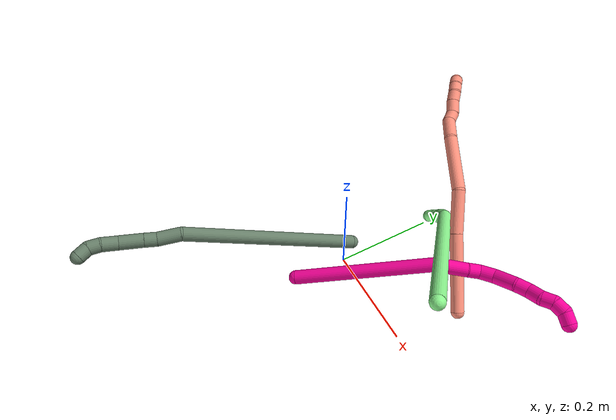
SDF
<sdf version="1.7">
 <world name="default">
  <model name="13">
   <static>0</static>
   <link name="13">
    <collision name="collision-cylinder-e_1_1_4">
     <pose>0.006125 0.071233 -0.178175 -2.76126 0.031911 -0.165414</pose>
     <geometry><cylinder><radius>0.0125</radius><length>0.383968</length></cylinder></geometry>
     <surface>
      <friction><ode><mu>1.16</mu><mu2>1.16</mu2><slip1>0</slip1><slip2>0</slip2></ode></friction>
      <contact><ode><kp>1e+06</kp><kd>1</kd><max_vel>0</max_vel><min_depth>0.001</min_depth></ode></contact>
     </surface>
    </collision>
    <visual name="visual-cylinder-e_1_1_4">
     <pose>0.006125 0.071233 -0.178175 -2.76126 0.031911 -0.165414</pose>
     <geometry><cylinder><radius>0.0125</radius><length>0.383968</length></cylinder></geometry>
     <material><ambient>0.564706 0.984314 0.572549 1</ambient></material>
    </visual>
    <collision name="collision-cylinder-e_2_4_5">
     <pose>0.011922 0.142947 -0.367988 -3.10032 -0.028196 1.1985</pose>
     <geometry><cylinder><radius>0.0125</radius><length>0.023306</length></cylinder></geometry>
     <surface>
      <friction><ode><mu>1.16</mu><mu2>1.16</mu2><slip1>0</slip1><slip2>0</slip2></ode></friction>
      <contact><ode><kp>1e+06</kp><kd>1</kd><max_vel>0</max_vel><min_depth>0.001</min_depth></ode></contact>
     </surface>
    </collision>
    <visual name="visual-cylinder-e_2_4_5">
     <pose>0.011922 0.142947 -0.367988 -3.10032 -0.028196 1.1985</pose>
     <geometry><cylinder><radius>0.0125</radius><length>0.023306</length></cylinder></geometry>
     <material><ambient>0.564706 0.984314 0.572549 1</ambient></material>
    </visual>
    <collision name="collision-cylinder-e_3_5_6">
     <pose>0.013087 0.143549 -0.393059 -3.13252 0.110751 -2.9783</pose>
     <geometry><cylinder><radius>0.0125</radius><length>0.027032</length></cylinder></geometry>
     <surface>
      <friction><ode><mu>1.16</mu><mu2>1.16</mu2><slip1>0</slip1><slip2>0</slip2></ode></friction>
      <contact><ode><kp>1e+06</kp><kd>1</kd><max_vel>0</max_vel><min_depth>0.001</min_depth></ode></contact>
     </surface>
    </collision>
    <visual name="visual-cylinder-e_3_5_6">
     <pose>0.013087 0.143549 -0.393059 -3.13252 0.110751 -2.9783</pose>
     <geometry><cylinder><radius>0.0125</radius><length>0.027032</length></cylinder></geometry>
     <material><ambient>0.564706 0.984314 0.572549 1</ambient></material>
    </visual>
    <collision name="collision-cylinder-e_4_6_7">
     <pose>0.017201 0.14315 -0.418764 3.09917 0.21013 2.74457</pose>
     <geometry><cylinder><radius>0.0125</radius><length>0.02512</length></cylinder></geometry>
     <surface>
      <friction><ode><mu>1.16</mu><mu2>1.16</mu2><slip1>0</slip1><slip2>0</slip2></ode></friction>
      <contact><ode><kp>1e+06</kp><kd>1</kd><max_vel>0</max_vel><min_depth>0.001</min_depth></ode></contact>
     </surface>
    </collision>
    <visual name="visual-cylinder-e_4_6_7">
     <pose>0.017201 0.14315 -0.418764 3.09917 0.21013 2.74457</pose>
     <geometry><cylinder><radius>0.0125</radius><length>0.02512</length></cylinder></geometry>
     <material><ambient>0.564706 0.984314 0.572549 1</ambient></material>
    </visual>
    <collision name="collision-cylinder-e_5_7_8">
     <pose>0.018922 0.142635 -0.441009 -3.14106 -0.089875 3.12979</pose>
     <geometry><cylinder><radius>0.0125</radius><length>0.020026</length></cylinder></geometry>
     <surface>
      <friction><ode><mu>1.16</mu><mu2>1.16</mu2><slip1>0</slip1><slip2>0</slip2></ode></friction>
      <contact><ode><kp>1e+06</kp><kd>1</kd><max_vel>0</max_vel><min_depth>0.001</min_depth></ode></contact>
     </surface>
    </collision>
    <visual name="visual-cylinder-e_5_7_8">
     <pose>0.018922 0.142635 -0.441009 -3.14106 -0.089875 3.12979</pose>
     <geometry><cylinder><radius>0.0125</radius><length>0.020026</length></cylinder></geometry>
     <material><ambient>0.564706 0.984314 0.572549 1</ambient></material>
    </visual>
    <collision name="collision-cylinder-e_6_8_2">
     <pose>0.015182 0.13915 -0.460218 2.78028 -0.280201 -1.31502</pose>
     <geometry><cylinder><radius>0.0125</radius><length>0.020548</length></cylinder></geometry>
     <surface>
      <friction><ode><mu>1.16</mu><mu2>1.16</mu2><slip1>0</slip1><slip2>0</slip2></ode></friction>
      <contact><ode><kp>1e+06</kp><kd>1</kd><max_vel>0</max_vel><min_depth>0.001</min_depth></ode></contact>
     </surface>
    </collision>
    <visual name="visual-cylinder-e_6_8_2">
     <pose>0.015182 0.13915 -0.460218 2.78028 -0.280201 -1.31502</pose>
     <geometry><cylinder><radius>0.0125</radius><length>0.020548</length></cylinder></geometry>
     <material><ambient>0.564706 0.984314 0.572549 1</ambient></material>
    </visual>
    <collision name="collision-sphere-2">
     <pose>0.012341 0.135659 -0.469454 0 -0 0</pose>
     <geometry><sphere><radius>0.0125</radius></sphere></geometry>
     <surface>
      <friction><ode><mu>1.16</mu><mu2>1.16</mu2><slip1>0</slip1><slip2>0</slip2></ode></friction>
      <contact><ode><kp>1e+06</kp><kd>1</kd><max_vel>0</max_vel><min_depth>0.001</min_depth></ode></contact>
     </surface>
    </collision>
    <visual name="visual-sphere-2">
     <pose>0.012341 0.135659 -0.469454 0 -0 0</pose>
     <geometry><sphere><radius>0.0125</radius></sphere></geometry>
     <material><ambient>0.564706 0.984314 0.572549 1</ambient></material>
    </visual>
    <collision name="collision-sphere-4">
     <pose>0.012251 0.142466 -0.356349 0 -0 0</pose>
     <geometry><sphere><radius>0.0125</radius></sphere></geometry>
     <surface>
      <friction><ode><mu>1.16</mu><mu2>1.16</mu2><slip1>0</slip1><slip2>0</slip2></ode></friction>
      <contact><ode><kp>1e+06</kp><kd>1</kd><max_vel>0</max_vel><min_depth>0.001</min_depth></ode></contact>
     </surface>
    </collision>
    <visual name="visual-sphere-4">
     <pose>0.012251 0.142466 -0.356349 0 -0 0</pose>
     <geometry><sphere><radius>0.0125</radius></sphere></geometry>
     <material><ambient>0.564706 0.984314 0.572549 1</ambient></material>
    </visual>
    <collision name="collision-sphere-1">
     <geometry><sphere><radius>0.0125</radius></sphere></geometry>
     <surface>
      <friction><ode><mu>1.16</mu><mu2>1.16</mu2><slip1>0</slip1><slip2>0</slip2></ode></friction>
      <contact><ode><kp>1e+06</kp><kd>1</kd><max_vel>0</max_vel><min_depth>0.001</min_depth></ode></contact>
     </surface>
    </collision>
    <visual name="visual-sphere-1">
     <geometry><sphere><radius>0.0125</radius></sphere></geometry>
     <material><ambient>0.564706 0.984314 0.572549 1</ambient></material>
    </visual>
    <collision name="collision-sphere-8">
     <pose>0.018023 0.14264 -0.450982 0 -0 0</pose>
     <geometry><sphere><radius>0.0125</radius></sphere></geometry>
     <surface>
      <friction><ode><mu>1.16</mu><mu2>1.16</mu2><slip1>0</slip1><slip2>0</slip2></ode></friction>
      <contact><ode><kp>1e+06</kp><kd>1</kd><max_vel>0</max_vel><min_depth>0.001</min_depth></ode></contact>
     </surface>
    </collision>
    <visual name="visual-sphere-8">
     <pose>0.018023 0.14264 -0.450982 0 -0 0</pose>
     <geometry><sphere><radius>0.0125</radius></sphere></geometry>
     <material><ambient>0.564706 0.984314 0.572549 1</ambient></material>
    </visual>
    <collision name="collision-sphere-5">
     <pose>0.011594 0.143427 -0.379626 0 -0 0</pose>
     <geometry><sphere><radius>0.0125</radius></sphere></geometry>
     <surface>
      <friction><ode><mu>1.16</mu><mu2>1.16</mu2><slip1>0</slip1><slip2>0</slip2></ode></friction>
      <contact><ode><kp>1e+06</kp><kd>1</kd><max_vel>0</max_vel><min_depth>0.001</min_depth></ode></contact>
     </surface>
    </collision>
    <visual name="visual-sphere-5">
     <pose>0.011594 0.143427 -0.379626 0 -0 0</pose>
     <geometry><sphere><radius>0.0125</radius></sphere></geometry>
     <material><ambient>0.564706 0.984314 0.572549 1</ambient></material>
    </visual>
    <collision name="collision-sphere-6">
     <pose>0.014581 0.143671 -0.406492 0 -0 0</pose>
     <geometry><sphere><radius>0.0125</radius></sphere></geometry>
     <surface>
      <friction><ode><mu>1.16</mu><mu2>1.16</mu2><slip1>0</slip1><slip2>0</slip2></ode></friction>
      <contact><ode><kp>1e+06</kp><kd>1</kd><max_vel>0</max_vel><min_depth>0.001</min_depth></ode></contact>
     </surface>
    </collision>
    <visual name="visual-sphere-6">
     <pose>0.014581 0.143671 -0.406492 0 -0 0</pose>
     <geometry><sphere><radius>0.0125</radius></sphere></geometry>
     <material><ambient>0.564706 0.984314 0.572549 1</ambient></material>
    </visual>
    <collision name="collision-sphere-7">
     <pose>0.019821 0.142629 -0.431037 0 -0 0</pose>
     <geometry><sphere><radius>0.0125</radius></sphere></geometry>
     <surface>
      <friction><ode><mu>1.16</mu><mu2>1.16</mu2><slip1>0</slip1><slip2>0</slip2></ode></friction>
      <contact><ode><kp>1e+06</kp><kd>1</kd><max_vel>0</max_vel><min_depth>0.001</min_depth></ode></contact>
     </surface>
    </collision>
    <visual name="visual-sphere-7">
     <pose>0.019821 0.142629 -0.431037 0 -0 0</pose>
     <geometry><sphere><radius>0.0125</radius></sphere></geometry>
     <material><ambient>0.564706 0.984314 0.572549 1</ambient></material>
    </visual>
    <inertial>
     <pose>0.008213 0.087749 -0.232845 0 -0 0</pose>
     <mass>0.5</mass>
     <inertia>
      <ixx>0.003883</ixx>
      <ixy>0</ixy>
      <ixz>0</ixz>
      <iyy>-0.005087</iyy>
      <iyz>0</iyz>
      <izz>-0.001943</izz>
     </inertia>
    </inertial>
   </link>
   <pose>0.301243 -0.033363 0.303134 0.568648 0.487925 0.52333</pose>
  </model>
  <model name="16">
   <static>0</static>
   <link name="16">
    <collision name="collision-cylinder-e_1_1_4">
     <pose>0.004253 0.005961 0.072459 -0.082085 0.058429 -0.0024</pose>
     <geometry><cylinder><radius>0.0125</radius><length>0.145657</length></cylinder></geometry>
     <surface>
      <friction><ode><mu>1.16</mu><mu2>1.16</mu2><slip1>0</slip1><slip2>0</slip2></ode></friction>
      <contact><ode><kp>1e+06</kp><kd>1</kd><max_vel>0</max_vel><min_depth>0.001</min_depth></ode></contact>
     </surface>
    </collision>
    <visual name="visual-cylinder-e_1_1_4">
     <pose>0.004253 0.005961 0.072459 -0.082085 0.058429 -0.0024</pose>
     <geometry><cylinder><radius>0.0125</radius><length>0.145657</length></cylinder></geometry>
     <material><ambient>1 0.576471 0.494118 1</ambient></material>
    </visual>
    <collision name="collision-cylinder-e_2_4_5">
     <pose>0.009353 0.017816 0.18552 -0.14414 0.020644 -0.00149</pose>
     <geometry><cylinder><radius>0.0125</radius><length>0.082071</length></cylinder></geometry>
     <surface>
      <friction><ode><mu>1.16</mu><mu2>1.16</mu2><slip1>0</slip1><slip2>0</slip2></ode></friction>
      <contact><ode><kp>1e+06</kp><kd>1</kd><max_vel>0</max_vel><min_depth>0.001</min_depth></ode></contact>
     </surface>
    </collision>
    <visual name="visual-cylinder-e_2_4_5">
     <pose>0.009353 0.017816 0.18552 -0.14414 0.020644 -0.00149</pose>
     <geometry><cylinder><radius>0.0125</radius><length>0.082071</length></cylinder></geometry>
     <material><ambient>1 0.576471 0.494118 1</ambient></material>
    </visual>
    <collision name="collision-cylinder-e_3_5_6">
     <pose>-0.00647 0.019336 0.278954 0.08257 -0.304664 -0.012683</pose>
     <geometry><cylinder><radius>0.0125</radius><length>0.111144</length></cylinder></geometry>
     <surface>
      <friction><ode><mu>1.16</mu><mu2>1.16</mu2><slip1>0</slip1><slip2>0</slip2></ode></friction>
      <contact><ode><kp>1e+06</kp><kd>1</kd><max_vel>0</max_vel><min_depth>0.001</min_depth></ode></contact>
     </surface>
    </collision>
    <visual name="visual-cylinder-e_3_5_6">
     <pose>-0.00647 0.019336 0.278954 0.08257 -0.304664 -0.012683</pose>
     <geometry><cylinder><radius>0.0125</radius><length>0.111144</length></cylinder></geometry>
     <material><ambient>1 0.576471 0.494118 1</ambient></material>
    </visual>
    <collision name="collision-cylinder-e_4_6_7">
     <pose>-0.037954 0.013231 0.352226 0.084578 -0.62544 -0.027361</pose>
     <geometry><cylinder><radius>0.0125</radius><length>0.050605</length></cylinder></geometry>
     <surface>
      <friction><ode><mu>1.16</mu><mu2>1.16</mu2><slip1>0</slip1><slip2>0</slip2></ode></friction>
      <contact><ode><kp>1e+06</kp><kd>1</kd><max_vel>0</max_vel><min_depth>0.001</min_depth></ode></contact>
     </surface>
    </collision>
    <visual name="visual-cylinder-e_4_6_7">
     <pose>-0.037954 0.013231 0.352226 0.084578 -0.62544 -0.027361</pose>
     <geometry><cylinder><radius>0.0125</radius><length>0.050605</length></cylinder></geometry>
     <material><ambient>1 0.576471 0.494118 1</ambient></material>
    </visual>
    <collision name="collision-cylinder-e_5_7_8">
     <pose>-0.058431 0.015338 0.381248 -0.420655 -0.542103 0.118512</pose>
     <geometry><cylinder><radius>0.0125</radius><length>0.021953</length></cylinder></geometry>
     <surface>
      <friction><ode><mu>1.16</mu><mu2>1.16</mu2><slip1>0</slip1><slip2>0</slip2></ode></friction>
      <contact><ode><kp>1e+06</kp><kd>1</kd><max_vel>0</max_vel><min_depth>0.001</min_depth></ode></contact>
     </surface>
    </collision>
    <visual name="visual-cylinder-e_5_7_8">
     <pose>-0.058431 0.015338 0.381248 -0.420655 -0.542103 0.118512</pose>
     <geometry><cylinder><radius>0.0125</radius><length>0.021953</length></cylinder></geometry>
     <material><ambient>1 0.576471 0.494118 1</ambient></material>
    </visual>
    <collision name="collision-cylinder-e_6_8_9">
     <pose>-0.06766 0.020311 0.402656 -0.08813 -0.270196 0.011987</pose>
     <geometry><cylinder><radius>0.0125</radius><length>0.026718</length></cylinder></geometry>
     <surface>
      <friction><ode><mu>1.16</mu><mu2>1.16</mu2><slip1>0</slip1><slip2>0</slip2></ode></friction>
      <contact><ode><kp>1e+06</kp><kd>1</kd><max_vel>0</max_vel><min_depth>0.001</min_depth></ode></contact>
     </surface>
    </collision>
    <visual name="visual-cylinder-e_6_8_9">
     <pose>-0.06766 0.020311 0.402656 -0.08813 -0.270196 0.011987</pose>
     <geometry><cylinder><radius>0.0125</radius><length>0.026718</length></cylinder></geometry>
     <material><ambient>1 0.576471 0.494118 1</ambient></material>
    </visual>
    <collision name="collision-cylinder-e_7_9_10">
     <pose>-0.074332 0.023765 0.425536 -0.226857 -0.292441 0.03355</pose>
     <geometry><cylinder><radius>0.0125</radius><length>0.021556</length></cylinder></geometry>
     <surface>
      <friction><ode><mu>1.16</mu><mu2>1.16</mu2><slip1>0</slip1><slip2>0</slip2></ode></friction>
      <contact><ode><kp>1e+06</kp><kd>1</kd><max_vel>0</max_vel><min_depth>0.001</min_depth></ode></contact>
     </surface>
    </collision>
    <visual name="visual-cylinder-e_7_9_10">
     <pose>-0.074332 0.023765 0.425536 -0.226857 -0.292441 0.03355</pose>
     <geometry><cylinder><radius>0.0125</radius><length>0.021556</length></cylinder></geometry>
     <material><ambient>1 0.576471 0.494118 1</ambient></material>
    </visual>
    <collision name="collision-cylinder-e_8_10_11">
     <pose>-0.082596 0.027142 0.444198 -0.122032 -0.536471 0.03358</pose>
     <geometry><cylinder><radius>0.0125</radius><length>0.020176</length></cylinder></geometry>
     <surface>
      <friction><ode><mu>1.16</mu><mu2>1.16</mu2><slip1>0</slip1><slip2>0</slip2></ode></friction>
      <contact><ode><kp>1e+06</kp><kd>1</kd><max_vel>0</max_vel><min_depth>0.001</min_depth></ode></contact>
     </surface>
    </collision>
    <visual name="visual-cylinder-e_8_10_11">
     <pose>-0.082596 0.027142 0.444198 -0.122032 -0.536471 0.03358</pose>
     <geometry><cylinder><radius>0.0125</radius><length>0.020176</length></cylinder></geometry>
     <material><ambient>1 0.576471 0.494118 1</ambient></material>
    </visual>
    <collision name="collision-cylinder-e_9_11_2">
     <pose>-0.094756 0.029027 0.459978 -0.115217 -0.77009 0.046738</pose>
     <geometry><cylinder><radius>0.0125</radius><length>0.02012</length></cylinder></geometry>
     <surface>
      <friction><ode><mu>1.16</mu><mu2>1.16</mu2><slip1>0</slip1><slip2>0</slip2></ode></friction>
      <contact><ode><kp>1e+06</kp><kd>1</kd><max_vel>0</max_vel><min_depth>0.001</min_depth></ode></contact>
     </surface>
    </collision>
    <visual name="visual-cylinder-e_9_11_2">
     <pose>-0.094756 0.029027 0.459978 -0.115217 -0.77009 0.046738</pose>
     <geometry><cylinder><radius>0.0125</radius><length>0.02012</length></cylinder></geometry>
     <material><ambient>1 0.576471 0.494118 1</ambient></material>
    </visual>
    <collision name="collision-sphere-2">
     <pose>-0.101759 0.029858 0.467152 0 -0 0</pose>
     <geometry><sphere><radius>0.0125</radius></sphere></geometry>
     <surface>
      <friction><ode><mu>1.16</mu><mu2>1.16</mu2><slip1>0</slip1><slip2>0</slip2></ode></friction>
      <contact><ode><kp>1e+06</kp><kd>1</kd><max_vel>0</max_vel><min_depth>0.001</min_depth></ode></contact>
     </surface>
    </collision>
    <visual name="visual-sphere-2">
     <pose>-0.101759 0.029858 0.467152 0 -0 0</pose>
     <geometry><sphere><radius>0.0125</radius></sphere></geometry>
     <material><ambient>1 0.576471 0.494118 1</ambient></material>
    </visual>
    <collision name="collision-sphere-11">
     <pose>-0.087752 0.028197 0.452804 0 -0 0</pose>
     <geometry><sphere><radius>0.0125</radius></sphere></geometry>
     <surface>
      <friction><ode><mu>1.16</mu><mu2>1.16</mu2><slip1>0</slip1><slip2>0</slip2></ode></friction>
      <contact><ode><kp>1e+06</kp><kd>1</kd><max_vel>0</max_vel><min_depth>0.001</min_depth></ode></contact>
     </surface>
    </collision>
    <visual name="visual-sphere-11">
     <pose>-0.087752 0.028197 0.452804 0 -0 0</pose>
     <geometry><sphere><radius>0.0125</radius></sphere></geometry>
     <material><ambient>1 0.576471 0.494118 1</ambient></material>
    </visual>
    <collision name="collision-sphere-10">
     <pose>-0.07744 0.026086 0.435591 0 -0 0</pose>
     <geometry><sphere><radius>0.0125</radius></sphere></geometry>
     <surface>
      <friction><ode><mu>1.16</mu><mu2>1.16</mu2><slip1>0</slip1><slip2>0</slip2></ode></friction>
      <contact><ode><kp>1e+06</kp><kd>1</kd><max_vel>0</max_vel><min_depth>0.001</min_depth></ode></contact>
     </surface>
    </collision>
    <visual name="visual-sphere-10">
     <pose>-0.07744 0.026086 0.435591 0 -0 0</pose>
     <geometry><sphere><radius>0.0125</radius></sphere></geometry>
     <material><ambient>1 0.576471 0.494118 1</ambient></material>
    </visual>
    <collision name="collision-sphere-9">
     <pose>-0.071225 0.021444 0.41548 0 -0 0</pose>
     <geometry><sphere><radius>0.0125</radius></sphere></geometry>
     <surface>
      <friction><ode><mu>1.16</mu><mu2>1.16</mu2><slip1>0</slip1><slip2>0</slip2></ode></friction>
      <contact><ode><kp>1e+06</kp><kd>1</kd><max_vel>0</max_vel><min_depth>0.001</min_depth></ode></contact>
     </surface>
    </collision>
    <visual name="visual-sphere-9">
     <pose>-0.071225 0.021444 0.41548 0 -0 0</pose>
     <geometry><sphere><radius>0.0125</radius></sphere></geometry>
     <material><ambient>1 0.576471 0.494118 1</ambient></material>
    </visual>
    <collision name="collision-sphere-4">
     <pose>0.008506 0.011922 0.144919 0 -0 0</pose>
     <geometry><sphere><radius>0.0125</radius></sphere></geometry>
     <surface>
      <friction><ode><mu>1.16</mu><mu2>1.16</mu2><slip1>0</slip1><slip2>0</slip2></ode></friction>
      <contact><ode><kp>1e+06</kp><kd>1</kd><max_vel>0</max_vel><min_depth>0.001</min_depth></ode></contact>
     </surface>
    </collision>
    <visual name="visual-sphere-4">
     <pose>0.008506 0.011922 0.144919 0 -0 0</pose>
     <geometry><sphere><radius>0.0125</radius></sphere></geometry>
     <material><ambient>1 0.576471 0.494118 1</ambient></material>
    </visual>
    <collision name="collision-sphere-1">
     <geometry><sphere><radius>0.0125</radius></sphere></geometry>
     <surface>
      <friction><ode><mu>1.16</mu><mu2>1.16</mu2><slip1>0</slip1><slip2>0</slip2></ode></friction>
      <contact><ode><kp>1e+06</kp><kd>1</kd><max_vel>0</max_vel><min_depth>0.001</min_depth></ode></contact>
     </surface>
    </collision>
    <visual name="visual-sphere-1">
     <geometry><sphere><radius>0.0125</radius></sphere></geometry>
     <material><ambient>1 0.576471 0.494118 1</ambient></material>
    </visual>
    <collision name="collision-sphere-8">
     <pose>-0.064094 0.019178 0.389831 0 -0 0</pose>
     <geometry><sphere><radius>0.0125</radius></sphere></geometry>
     <surface>
      <friction><ode><mu>1.16</mu><mu2>1.16</mu2><slip1>0</slip1><slip2>0</slip2></ode></friction>
      <contact><ode><kp>1e+06</kp><kd>1</kd><max_vel>0</max_vel><min_depth>0.001</min_depth></ode></contact>
     </surface>
    </collision>
    <visual name="visual-sphere-8">
     <pose>-0.064094 0.019178 0.389831 0 -0 0</pose>
     <geometry><sphere><radius>0.0125</radius></sphere></geometry>
     <material><ambient>1 0.576471 0.494118 1</ambient></material>
    </visual>
    <collision name="collision-sphere-5">
     <pose>0.0102 0.023709 0.226121 0 -0 0</pose>
     <geometry><sphere><radius>0.0125</radius></sphere></geometry>
     <surface>
      <friction><ode><mu>1.16</mu><mu2>1.16</mu2><slip1>0</slip1><slip2>0</slip2></ode></friction>
      <contact><ode><kp>1e+06</kp><kd>1</kd><max_vel>0</max_vel><min_depth>0.001</min_depth></ode></contact>
     </surface>
    </collision>
    <visual name="visual-sphere-5">
     <pose>0.0102 0.023709 0.226121 0 -0 0</pose>
     <geometry><sphere><radius>0.0125</radius></sphere></geometry>
     <material><ambient>1 0.576471 0.494118 1</ambient></material>
    </visual>
    <collision name="collision-sphere-6">
     <pose>-0.02314 0.014964 0.331786 0 -0 0</pose>
     <geometry><sphere><radius>0.0125</radius></sphere></geometry>
     <surface>
      <friction><ode><mu>1.16</mu><mu2>1.16</mu2><slip1>0</slip1><slip2>0</slip2></ode></friction>
      <contact><ode><kp>1e+06</kp><kd>1</kd><max_vel>0</max_vel><min_depth>0.001</min_depth></ode></contact>
     </surface>
    </collision>
    <visual name="visual-sphere-6">
     <pose>-0.02314 0.014964 0.331786 0 -0 0</pose>
     <geometry><sphere><radius>0.0125</radius></sphere></geometry>
     <material><ambient>1 0.576471 0.494118 1</ambient></material>
    </visual>
    <collision name="collision-sphere-7">
     <pose>-0.052768 0.011498 0.372665 0 -0 0</pose>
     <geometry><sphere><radius>0.0125</radius></sphere></geometry>
     <surface>
      <friction><ode><mu>1.16</mu><mu2>1.16</mu2><slip1>0</slip1><slip2>0</slip2></ode></friction>
      <contact><ode><kp>1e+06</kp><kd>1</kd><max_vel>0</max_vel><min_depth>0.001</min_depth></ode></contact>
     </surface>
    </collision>
    <visual name="visual-sphere-7">
     <pose>-0.052768 0.011498 0.372665 0 -0 0</pose>
     <geometry><sphere><radius>0.0125</radius></sphere></geometry>
     <material><ambient>1 0.576471 0.494118 1</ambient></material>
    </visual>
    <inertial>
     <pose>-0.019037 0.015345 0.242252 0 -0 0</pose>
     <mass>0.5</mass>
     <inertia>
      <ixx>0.000434</ixx>
      <ixy>0</ixy>
      <ixz>0</ixz>
      <iyy>0.000451</iyy>
      <iyz>0</iyz>
      <izz>4.7e-05</izz>
     </inertia>
    </inertial>
   </link>
   <pose>0.22657 0.112639 0.038756 0.49013 -0.89382 -1.02022</pose>
  </model>
  <model name="17">
   <static>0</static>
   <link name="17">
    <collision name="collision-cylinder-e_1_1_4">
     <pose>-0.074066 -0.090119 0.114695 0.665975 -0.469849 -0.165185</pose>
     <geometry><cylinder><radius>0.0125</radius><length>0.327183</length></cylinder></geometry>
     <surface>
      <friction><ode><mu>1.16</mu><mu2>1.16</mu2><slip1>0</slip1><slip2>0</slip2></ode></friction>
      <contact><ode><kp>1e+06</kp><kd>1</kd><max_vel>0</max_vel><min_depth>0.001</min_depth></ode></contact>
     </surface>
    </collision>
    <visual name="visual-cylinder-e_1_1_4">
     <pose>-0.074066 -0.090119 0.114695 0.665975 -0.469849 -0.165185</pose>
     <geometry><cylinder><radius>0.0125</radius><length>0.327183</length></cylinder></geometry>
     <material><ambient>0.415686 0.509804 0.423529 1</ambient></material>
    </visual>
    <collision name="collision-cylinder-e_2_4_5">
     <pose>-0.150883 -0.195211 0.242983 0.833702 -0.13517 -0.059927</pose>
     <geometry><cylinder><radius>0.0125</radius><length>0.040817</length></cylinder></geometry>
     <surface>
      <friction><ode><mu>1.16</mu><mu2>1.16</mu2><slip1>0</slip1><slip2>0</slip2></ode></friction>
      <contact><ode><kp>1e+06</kp><kd>1</kd><max_vel>0</max_vel><min_depth>0.001</min_depth></ode></contact>
     </surface>
    </collision>
    <visual name="visual-cylinder-e_2_4_5">
     <pose>-0.150883 -0.195211 0.242983 0.833702 -0.13517 -0.059927</pose>
     <geometry><cylinder><radius>0.0125</radius><length>0.040817</length></cylinder></geometry>
     <material><ambient>0.415686 0.509804 0.423529 1</ambient></material>
    </visual>
    <collision name="collision-cylinder-e_3_5_6">
     <pose>-0.156949 -0.217436 0.263948 0.777132 -0.310261 -0.127869</pose>
     <geometry><cylinder><radius>0.0125</radius><length>0.021722</length></cylinder></geometry>
     <surface>
      <friction><ode><mu>1.16</mu><mu2>1.16</mu2><slip1>0</slip1><slip2>0</slip2></ode></friction>
      <contact><ode><kp>1e+06</kp><kd>1</kd><max_vel>0</max_vel><min_depth>0.001</min_depth></ode></contact>
     </surface>
    </collision>
    <visual name="visual-cylinder-e_3_5_6">
     <pose>-0.156949 -0.217436 0.263948 0.777132 -0.310261 -0.127869</pose>
     <geometry><cylinder><radius>0.0125</radius><length>0.021722</length></cylinder></geometry>
     <material><ambient>0.415686 0.509804 0.423529 1</ambient></material>
    </visual>
    <collision name="collision-cylinder-e_4_6_7">
     <pose>-0.165881 -0.238743 0.285436 0.783262 -0.274822 -0.114087</pose>
     <geometry><cylinder><radius>0.0125</radius><length>0.04139</length></cylinder></geometry>
     <surface>
      <friction><ode><mu>1.16</mu><mu2>1.16</mu2><slip1>0</slip1><slip2>0</slip2></ode></friction>
      <contact><ode><kp>1e+06</kp><kd>1</kd><max_vel>0</max_vel><min_depth>0.001</min_depth></ode></contact>
     </surface>
    </collision>
    <visual name="visual-cylinder-e_4_6_7">
     <pose>-0.165881 -0.238743 0.285436 0.783262 -0.274822 -0.114087</pose>
     <geometry><cylinder><radius>0.0125</radius><length>0.04139</length></cylinder></geometry>
     <material><ambient>0.415686 0.509804 0.423529 1</ambient></material>
    </visual>
    <collision name="collision-cylinder-e_5_7_8">
     <pose>-0.176044 -0.260356 0.310361 0.610148 -0.331935 -0.105401</pose>
     <geometry><cylinder><radius>0.0125</radius><length>0.027905</length></cylinder></geometry>
     <surface>
      <friction><ode><mu>1.16</mu><mu2>1.16</mu2><slip1>0</slip1><slip2>0</slip2></ode></friction>
      <contact><ode><kp>1e+06</kp><kd>1</kd><max_vel>0</max_vel><min_depth>0.001</min_depth></ode></contact>
     </surface>
    </collision>
    <visual name="visual-cylinder-e_5_7_8">
     <pose>-0.176044 -0.260356 0.310361 0.610148 -0.331935 -0.105401</pose>
     <geometry><cylinder><radius>0.0125</radius><length>0.027905</length></cylinder></geometry>
     <material><ambient>0.415686 0.509804 0.423529 1</ambient></material>
    </visual>
    <collision name="collision-cylinder-e_6_8_9">
     <pose>-0.181709 -0.274409 0.328958 0.695298 -0.109878 -0.039851</pose>
     <geometry><cylinder><radius>0.0125</radius><length>0.020402</length></cylinder></geometry>
     <surface>
      <friction><ode><mu>1.16</mu><mu2>1.16</mu2><slip1>0</slip1><slip2>0</slip2></ode></friction>
      <contact><ode><kp>1e+06</kp><kd>1</kd><max_vel>0</max_vel><min_depth>0.001</min_depth></ode></contact>
     </surface>
    </collision>
    <visual name="visual-cylinder-e_6_8_9">
     <pose>-0.181709 -0.274409 0.328958 0.695298 -0.109878 -0.039851</pose>
     <geometry><cylinder><radius>0.0125</radius><length>0.020402</length></cylinder></geometry>
     <material><ambient>0.415686 0.509804 0.423529 1</ambient></material>
    </visual>
    <collision name="collision-cylinder-e_7_9_2">
     <pose>-0.18003 -0.284526 0.34596 0.374357 0.275379 0.052476</pose>
     <geometry><cylinder><radius>0.0125</radius><length>0.020581</length></cylinder></geometry>
     <surface>
      <friction><ode><mu>1.16</mu><mu2>1.16</mu2><slip1>0</slip1><slip2>0</slip2></ode></friction>
      <contact><ode><kp>1e+06</kp><kd>1</kd><max_vel>0</max_vel><min_depth>0.001</min_depth></ode></contact>
     </surface>
    </collision>
    <visual name="visual-cylinder-e_7_9_2">
     <pose>-0.18003 -0.284526 0.34596 0.374357 0.275379 0.052476</pose>
     <geometry><cylinder><radius>0.0125</radius><length>0.020581</length></cylinder></geometry>
     <material><ambient>0.415686 0.509804 0.423529 1</ambient></material>
    </visual>
    <collision name="collision-sphere-2">
     <pose>-0.177232 -0.288147 0.355177 0 -0 0</pose>
     <geometry><sphere><radius>0.0125</radius></sphere></geometry>
     <surface>
      <friction><ode><mu>1.16</mu><mu2>1.16</mu2><slip1>0</slip1><slip2>0</slip2></ode></friction>
      <contact><ode><kp>1e+06</kp><kd>1</kd><max_vel>0</max_vel><min_depth>0.001</min_depth></ode></contact>
     </surface>
    </collision>
    <visual name="visual-sphere-2">
     <pose>-0.177232 -0.288147 0.355177 0 -0 0</pose>
     <geometry><sphere><radius>0.0125</radius></sphere></geometry>
     <material><ambient>0.415686 0.509804 0.423529 1</ambient></material>
    </visual>
    <collision name="collision-sphere-9">
     <pose>-0.182828 -0.280905 0.336743 0 -0 0</pose>
     <geometry><sphere><radius>0.0125</radius></sphere></geometry>
     <surface>
      <friction><ode><mu>1.16</mu><mu2>1.16</mu2><slip1>0</slip1><slip2>0</slip2></ode></friction>
      <contact><ode><kp>1e+06</kp><kd>1</kd><max_vel>0</max_vel><min_depth>0.001</min_depth></ode></contact>
     </surface>
    </collision>
    <visual name="visual-sphere-9">
     <pose>-0.182828 -0.280905 0.336743 0 -0 0</pose>
     <geometry><sphere><radius>0.0125</radius></sphere></geometry>
     <material><ambient>0.415686 0.509804 0.423529 1</ambient></material>
    </visual>
    <collision name="collision-sphere-4">
     <pose>-0.148133 -0.180238 0.229391 0 -0 0</pose>
     <geometry><sphere><radius>0.0125</radius></sphere></geometry>
     <surface>
      <friction><ode><mu>1.16</mu><mu2>1.16</mu2><slip1>0</slip1><slip2>0</slip2></ode></friction>
      <contact><ode><kp>1e+06</kp><kd>1</kd><max_vel>0</max_vel><min_depth>0.001</min_depth></ode></contact>
     </surface>
    </collision>
    <visual name="visual-sphere-4">
     <pose>-0.148133 -0.180238 0.229391 0 -0 0</pose>
     <geometry><sphere><radius>0.0125</radius></sphere></geometry>
     <material><ambient>0.415686 0.509804 0.423529 1</ambient></material>
    </visual>
    <collision name="collision-sphere-1">
     <geometry><sphere><radius>0.0125</radius></sphere></geometry>
     <surface>
      <friction><ode><mu>1.16</mu><mu2>1.16</mu2><slip1>0</slip1><slip2>0</slip2></ode></friction>
      <contact><ode><kp>1e+06</kp><kd>1</kd><max_vel>0</max_vel><min_depth>0.001</min_depth></ode></contact>
     </surface>
    </collision>
    <visual name="visual-sphere-1">
     <geometry><sphere><radius>0.0125</radius></sphere></geometry>
     <material><ambient>0.415686 0.509804 0.423529 1</ambient></material>
    </visual>
    <collision name="collision-sphere-8">
     <pose>-0.180591 -0.267914 0.321172 0 -0 0</pose>
     <geometry><sphere><radius>0.0125</radius></sphere></geometry>
     <surface>
      <friction><ode><mu>1.16</mu><mu2>1.16</mu2><slip1>0</slip1><slip2>0</slip2></ode></friction>
      <contact><ode><kp>1e+06</kp><kd>1</kd><max_vel>0</max_vel><min_depth>0.001</min_depth></ode></contact>
     </surface>
    </collision>
    <visual name="visual-sphere-8">
     <pose>-0.180591 -0.267914 0.321172 0 -0 0</pose>
     <geometry><sphere><radius>0.0125</radius></sphere></geometry>
     <material><ambient>0.415686 0.509804 0.423529 1</ambient></material>
    </visual>
    <collision name="collision-sphere-5">
     <pose>-0.153633 -0.210184 0.256575 0 -0 0</pose>
     <geometry><sphere><radius>0.0125</radius></sphere></geometry>
     <surface>
      <friction><ode><mu>1.16</mu><mu2>1.16</mu2><slip1>0</slip1><slip2>0</slip2></ode></friction>
      <contact><ode><kp>1e+06</kp><kd>1</kd><max_vel>0</max_vel><min_depth>0.001</min_depth></ode></contact>
     </surface>
    </collision>
    <visual name="visual-sphere-5">
     <pose>-0.153633 -0.210184 0.256575 0 -0 0</pose>
     <geometry><sphere><radius>0.0125</radius></sphere></geometry>
     <material><ambient>0.415686 0.509804 0.423529 1</ambient></material>
    </visual>
    <collision name="collision-sphere-6">
     <pose>-0.160265 -0.224689 0.271322 0 -0 0</pose>
     <geometry><sphere><radius>0.0125</radius></sphere></geometry>
     <surface>
      <friction><ode><mu>1.16</mu><mu2>1.16</mu2><slip1>0</slip1><slip2>0</slip2></ode></friction>
      <contact><ode><kp>1e+06</kp><kd>1</kd><max_vel>0</max_vel><min_depth>0.001</min_depth></ode></contact>
     </surface>
    </collision>
    <visual name="visual-sphere-6">
     <pose>-0.160265 -0.224689 0.271322 0 -0 0</pose>
     <geometry><sphere><radius>0.0125</radius></sphere></geometry>
     <material><ambient>0.415686 0.509804 0.423529 1</ambient></material>
    </visual>
    <collision name="collision-sphere-7">
     <pose>-0.171497 -0.252797 0.299551 0 -0 0</pose>
     <geometry><sphere><radius>0.0125</radius></sphere></geometry>
     <surface>
      <friction><ode><mu>1.16</mu><mu2>1.16</mu2><slip1>0</slip1><slip2>0</slip2></ode></friction>
      <contact><ode><kp>1e+06</kp><kd>1</kd><max_vel>0</max_vel><min_depth>0.001</min_depth></ode></contact>
     </surface>
    </collision>
    <visual name="visual-sphere-7">
     <pose>-0.171497 -0.252797 0.299551 0 -0 0</pose>
     <geometry><sphere><radius>0.0125</radius></sphere></geometry>
     <material><ambient>0.415686 0.509804 0.423529 1</ambient></material>
    </visual>
    <inertial>
     <pose>-0.105984 -0.141555 0.174968 0 -0 0</pose>
     <mass>0.5</mass>
     <inertia>
      <ixx>0.002155</ixx>
      <ixy>0</ixy>
      <ixz>0</ixz>
      <iyy>0.001971</iyy>
      <iyz>0</iyz>
      <izz>0.002989</izz>
     </inertia>
    </inertial>
   </link>
   <pose>0.025162 1.8e-05 0.093597 0.952381 1.01131 0.029393</pose>
  </model>
  <model name="18">
   <static>0</static>
   <link name="18">
    <collision name="collision-cylinder-e_1_1_4">
     <pose>0.010772 0.073408 0.098756 -0.639218 0.087316 -0.028914</pose>
     <geometry><cylinder><radius>0.0125</radius><length>0.247042</length></cylinder></geometry>
     <surface>
      <friction><ode><mu>1.16</mu><mu2>1.16</mu2><slip1>0</slip1><slip2>0</slip2></ode></friction>
      <contact><ode><kp>1e+06</kp><kd>1</kd><max_vel>0</max_vel><min_depth>0.001</min_depth></ode></contact>
     </surface>
    </collision>
    <visual name="visual-cylinder-e_1_1_4">
     <pose>0.010772 0.073408 0.098756 -0.639218 0.087316 -0.028914</pose>
     <geometry><cylinder><radius>0.0125</radius><length>0.247042</length></cylinder></geometry>
     <material><ambient>1 0.007843 0.615686 1</ambient></material>
    </visual>
    <collision name="collision-cylinder-e_2_4_5">
     <pose>0.014962 0.166853 0.215481 -0.83974 -0.239829 0.107476</pose>
     <geometry><cylinder><radius>0.0125</radius><length>0.055415</length></cylinder></geometry>
     <surface>
      <friction><ode><mu>1.16</mu><mu2>1.16</mu2><slip1>0</slip1><slip2>0</slip2></ode></friction>
      <contact><ode><kp>1e+06</kp><kd>1</kd><max_vel>0</max_vel><min_depth>0.001</min_depth></ode></contact>
     </surface>
    </collision>
    <visual name="visual-cylinder-e_2_4_5">
     <pose>0.014962 0.166853 0.215481 -0.83974 -0.239829 0.107476</pose>
     <geometry><cylinder><radius>0.0125</radius><length>0.055415</length></cylinder></geometry>
     <material><ambient>1 0.007843 0.615686 1</ambient></material>
    </visual>
    <collision name="collision-cylinder-e_3_5_6">
     <pose>0.004343 0.194299 0.240834 -0.787097 -0.368386 0.154403</pose>
     <geometry><cylinder><radius>0.0125</radius><length>0.022424</length></cylinder></geometry>
     <surface>
      <friction><ode><mu>1.16</mu><mu2>1.16</mu2><slip1>0</slip1><slip2>0</slip2></ode></friction>
      <contact><ode><kp>1e+06</kp><kd>1</kd><max_vel>0</max_vel><min_depth>0.001</min_depth></ode></contact>
     </surface>
    </collision>
    <visual name="visual-cylinder-e_3_5_6">
     <pose>0.004343 0.194299 0.240834 -0.787097 -0.368386 0.154403</pose>
     <geometry><cylinder><radius>0.0125</radius><length>0.022424</length></cylinder></geometry>
     <material><ambient>1 0.007843 0.615686 1</ambient></material>
    </visual>
    <collision name="collision-cylinder-e_4_6_7">
     <pose>0.001573 0.213247 0.255077 -1.03447 0.094135 -0.05358</pose>
     <geometry><cylinder><radius>0.0125</radius><length>0.026968</length></cylinder></geometry>
     <surface>
      <friction><ode><mu>1.16</mu><mu2>1.16</mu2><slip1>0</slip1><slip2>0</slip2></ode></friction>
      <contact><ode><kp>1e+06</kp><kd>1</kd><max_vel>0</max_vel><min_depth>0.001</min_depth></ode></contact>
     </surface>
    </collision>
    <visual name="visual-cylinder-e_4_6_7">
     <pose>0.001573 0.213247 0.255077 -1.03447 0.094135 -0.05358</pose>
     <geometry><cylinder><radius>0.0125</radius><length>0.026968</length></cylinder></geometry>
     <material><ambient>1 0.007843 0.615686 1</ambient></material>
    </visual>
    <collision name="collision-cylinder-e_5_7_8">
     <pose>0.011668 0.241406 0.268128 -1.2142 0.46185 -0.323774</pose>
     <geometry><cylinder><radius>0.0125</radius><length>0.039623</length></cylinder></geometry>
     <surface>
      <friction><ode><mu>1.16</mu><mu2>1.16</mu2><slip1>0</slip1><slip2>0</slip2></ode></friction>
      <contact><ode><kp>1e+06</kp><kd>1</kd><max_vel>0</max_vel><min_depth>0.001</min_depth></ode></contact>
     </surface>
    </collision>
    <visual name="visual-cylinder-e_5_7_8">
     <pose>0.011668 0.241406 0.268128 -1.2142 0.46185 -0.323774</pose>
     <geometry><cylinder><radius>0.0125</radius><length>0.039623</length></cylinder></geometry>
     <material><ambient>1 0.007843 0.615686 1</ambient></material>
    </visual>
    <collision name="collision-cylinder-e_6_8_9">
     <pose>0.022192 0.268574 0.278205 -1.21789 0.149707 -0.104499</pose>
     <geometry><cylinder><radius>0.0125</radius><length>0.022735</length></cylinder></geometry>
     <surface>
      <friction><ode><mu>1.16</mu><mu2>1.16</mu2><slip1>0</slip1><slip2>0</slip2></ode></friction>
      <contact><ode><kp>1e+06</kp><kd>1</kd><max_vel>0</max_vel><min_depth>0.001</min_depth></ode></contact>
     </surface>
    </collision>
    <visual name="visual-cylinder-e_6_8_9">
     <pose>0.022192 0.268574 0.278205 -1.21789 0.149707 -0.104499</pose>
     <geometry><cylinder><radius>0.0125</radius><length>0.022735</length></cylinder></geometry>
     <material><ambient>1 0.007843 0.615686 1</ambient></material>
    </visual>
    <collision name="collision-cylinder-e_7_9_10">
     <pose>0.030143 0.289759 0.283812 -1.41026 0.525949 -0.450469</pose>
     <geometry><cylinder><radius>0.0125</radius><length>0.024919</length></cylinder></geometry>
     <surface>
      <friction><ode><mu>1.16</mu><mu2>1.16</mu2><slip1>0</slip1><slip2>0</slip2></ode></friction>
      <contact><ode><kp>1e+06</kp><kd>1</kd><max_vel>0</max_vel><min_depth>0.001</min_depth></ode></contact>
     </surface>
    </collision>
    <visual name="visual-cylinder-e_7_9_10">
     <pose>0.030143 0.289759 0.283812 -1.41026 0.525949 -0.450469</pose>
     <geometry><cylinder><radius>0.0125</radius><length>0.024919</length></cylinder></geometry>
     <material><ambient>1 0.007843 0.615686 1</ambient></material>
    </visual>
    <collision name="collision-cylinder-e_8_10_11">
     <pose>0.038695 0.309175 0.289898 -1.10952 0.230206 -0.143042</pose>
     <geometry><cylinder><radius>0.0125</radius><length>0.02014</length></cylinder></geometry>
     <surface>
      <friction><ode><mu>1.16</mu><mu2>1.16</mu2><slip1>0</slip1><slip2>0</slip2></ode></friction>
      <contact><ode><kp>1e+06</kp><kd>1</kd><max_vel>0</max_vel><min_depth>0.001</min_depth></ode></contact>
     </surface>
    </collision>
    <visual name="visual-cylinder-e_8_10_11">
     <pose>0.038695 0.309175 0.289898 -1.10952 0.230206 -0.143042</pose>
     <geometry><cylinder><radius>0.0125</radius><length>0.02014</length></cylinder></geometry>
     <material><ambient>1 0.007843 0.615686 1</ambient></material>
    </visual>
    <collision name="collision-cylinder-e_9_11_12">
     <pose>0.041475 0.328222 0.294598 -1.53809 0.046869 -0.045361</pose>
     <geometry><cylinder><radius>0.0125</radius><length>0.020566</length></cylinder></geometry>
     <surface>
      <friction><ode><mu>1.16</mu><mu2>1.16</mu2><slip1>0</slip1><slip2>0</slip2></ode></friction>
      <contact><ode><kp>1e+06</kp><kd>1</kd><max_vel>0</max_vel><min_depth>0.001</min_depth></ode></contact>
     </surface>
    </collision>
    <visual name="visual-cylinder-e_9_11_12">
     <pose>0.041475 0.328222 0.294598 -1.53809 0.046869 -0.045361</pose>
     <geometry><cylinder><radius>0.0125</radius><length>0.020566</length></cylinder></geometry>
     <material><ambient>1 0.007843 0.615686 1</ambient></material>
    </visual>
    <collision name="collision-cylinder-e_10_12_2">
     <pose>0.041013 0.347669 0.290872 -1.98733 -0.093732 0.143822</pose>
     <geometry><cylinder><radius>0.0125</radius><length>0.020167</length></cylinder></geometry>
     <surface>
      <friction><ode><mu>1.16</mu><mu2>1.16</mu2><slip1>0</slip1><slip2>0</slip2></ode></friction>
      <contact><ode><kp>1e+06</kp><kd>1</kd><max_vel>0</max_vel><min_depth>0.001</min_depth></ode></contact>
     </surface>
    </collision>
    <visual name="visual-cylinder-e_10_12_2">
     <pose>0.041013 0.347669 0.290872 -1.98733 -0.093732 0.143822</pose>
     <geometry><cylinder><radius>0.0125</radius><length>0.020167</length></cylinder></geometry>
     <material><ambient>1 0.007843 0.615686 1</ambient></material>
    </visual>
    <collision name="collision-sphere-2">
     <pose>0.040069 0.35685 0.28681 0 -0 0</pose>
     <geometry><sphere><radius>0.0125</radius></sphere></geometry>
     <surface>
      <friction><ode><mu>1.16</mu><mu2>1.16</mu2><slip1>0</slip1><slip2>0</slip2></ode></friction>
      <contact><ode><kp>1e+06</kp><kd>1</kd><max_vel>0</max_vel><min_depth>0.001</min_depth></ode></contact>
     </surface>
    </collision>
    <visual name="visual-sphere-2">
     <pose>0.040069 0.35685 0.28681 0 -0 0</pose>
     <geometry><sphere><radius>0.0125</radius></sphere></geometry>
     <material><ambient>1 0.007843 0.615686 1</ambient></material>
    </visual>
    <collision name="collision-sphere-12">
     <pose>0.041957 0.338488 0.294934 0 -0 0</pose>
     <geometry><sphere><radius>0.0125</radius></sphere></geometry>
     <surface>
      <friction><ode><mu>1.16</mu><mu2>1.16</mu2><slip1>0</slip1><slip2>0</slip2></ode></friction>
      <contact><ode><kp>1e+06</kp><kd>1</kd><max_vel>0</max_vel><min_depth>0.001</min_depth></ode></contact>
     </surface>
    </collision>
    <visual name="visual-sphere-12">
     <pose>0.041957 0.338488 0.294934 0 -0 0</pose>
     <geometry><sphere><radius>0.0125</radius></sphere></geometry>
     <material><ambient>1 0.007843 0.615686 1</ambient></material>
    </visual>
    <collision name="collision-sphere-11">
     <pose>0.040993 0.317955 0.294262 0 -0 0</pose>
     <geometry><sphere><radius>0.0125</radius></sphere></geometry>
     <surface>
      <friction><ode><mu>1.16</mu><mu2>1.16</mu2><slip1>0</slip1><slip2>0</slip2></ode></friction>
      <contact><ode><kp>1e+06</kp><kd>1</kd><max_vel>0</max_vel><min_depth>0.001</min_depth></ode></contact>
     </surface>
    </collision>
    <visual name="visual-sphere-11">
     <pose>0.040993 0.317955 0.294262 0 -0 0</pose>
     <geometry><sphere><radius>0.0125</radius></sphere></geometry>
     <material><ambient>1 0.007843 0.615686 1</ambient></material>
    </visual>
    <collision name="collision-sphere-10">
     <pose>0.036398 0.300396 0.285535 0 -0 0</pose>
     <geometry><sphere><radius>0.0125</radius></sphere></geometry>
     <surface>
      <friction><ode><mu>1.16</mu><mu2>1.16</mu2><slip1>0</slip1><slip2>0</slip2></ode></friction>
      <contact><ode><kp>1e+06</kp><kd>1</kd><max_vel>0</max_vel><min_depth>0.001</min_depth></ode></contact>
     </surface>
    </collision>
    <visual name="visual-sphere-10">
     <pose>0.036398 0.300396 0.285535 0 -0 0</pose>
     <geometry><sphere><radius>0.0125</radius></sphere></geometry>
     <material><ambient>1 0.007843 0.615686 1</ambient></material>
    </visual>
    <collision name="collision-sphere-9">
     <pose>0.023887 0.279121 0.28209 0 -0 0</pose>
     <geometry><sphere><radius>0.0125</radius></sphere></geometry>
     <surface>
      <friction><ode><mu>1.16</mu><mu2>1.16</mu2><slip1>0</slip1><slip2>0</slip2></ode></friction>
      <contact><ode><kp>1e+06</kp><kd>1</kd><max_vel>0</max_vel><min_depth>0.001</min_depth></ode></contact>
     </surface>
    </collision>
    <visual name="visual-sphere-9">
     <pose>0.023887 0.279121 0.28209 0 -0 0</pose>
     <geometry><sphere><radius>0.0125</radius></sphere></geometry>
     <material><ambient>1 0.007843 0.615686 1</ambient></material>
    </visual>
    <collision name="collision-sphere-4">
     <pose>0.021543 0.146816 0.197512 0 -0 0</pose>
     <geometry><sphere><radius>0.0125</radius></sphere></geometry>
     <surface>
      <friction><ode><mu>1.16</mu><mu2>1.16</mu2><slip1>0</slip1><slip2>0</slip2></ode></friction>
      <contact><ode><kp>1e+06</kp><kd>1</kd><max_vel>0</max_vel><min_depth>0.001</min_depth></ode></contact>
     </surface>
    </collision>
    <visual name="visual-sphere-4">
     <pose>0.021543 0.146816 0.197512 0 -0 0</pose>
     <geometry><sphere><radius>0.0125</radius></sphere></geometry>
     <material><ambient>1 0.007843 0.615686 1</ambient></material>
    </visual>
    <collision name="collision-sphere-1">
     <geometry><sphere><radius>0.0125</radius></sphere></geometry>
     <surface>
      <friction><ode><mu>1.16</mu><mu2>1.16</mu2><slip1>0</slip1><slip2>0</slip2></ode></friction>
      <contact><ode><kp>1e+06</kp><kd>1</kd><max_vel>0</max_vel><min_depth>0.001</min_depth></ode></contact>
     </surface>
    </collision>
    <visual name="visual-sphere-1">
     <geometry><sphere><radius>0.0125</radius></sphere></geometry>
     <material><ambient>1 0.007843 0.615686 1</ambient></material>
    </visual>
    <collision name="collision-sphere-8">
     <pose>0.020497 0.258026 0.27432 0 -0 0</pose>
     <geometry><sphere><radius>0.0125</radius></sphere></geometry>
     <surface>
      <friction><ode><mu>1.16</mu><mu2>1.16</mu2><slip1>0</slip1><slip2>0</slip2></ode></friction>
      <contact><ode><kp>1e+06</kp><kd>1</kd><max_vel>0</max_vel><min_depth>0.001</min_depth></ode></contact>
     </surface>
    </collision>
    <visual name="visual-sphere-8">
     <pose>0.020497 0.258026 0.27432 0 -0 0</pose>
     <geometry><sphere><radius>0.0125</radius></sphere></geometry>
     <material><ambient>1 0.007843 0.615686 1</ambient></material>
    </visual>
    <collision name="collision-sphere-5">
     <pose>0.00838 0.18689 0.233451 0 -0 0</pose>
     <geometry><sphere><radius>0.0125</radius></sphere></geometry>
     <surface>
      <friction><ode><mu>1.16</mu><mu2>1.16</mu2><slip1>0</slip1><slip2>0</slip2></ode></friction>
      <contact><ode><kp>1e+06</kp><kd>1</kd><max_vel>0</max_vel><min_depth>0.001</min_depth></ode></contact>
     </surface>
    </collision>
    <visual name="visual-sphere-5">
     <pose>0.00838 0.18689 0.233451 0 -0 0</pose>
     <geometry><sphere><radius>0.0125</radius></sphere></geometry>
     <material><ambient>1 0.007843 0.615686 1</ambient></material>
    </visual>
    <collision name="collision-sphere-6">
     <pose>0.000305 0.201707 0.248218 0 -0 0</pose>
     <geometry><sphere><radius>0.0125</radius></sphere></geometry>
     <surface>
      <friction><ode><mu>1.16</mu><mu2>1.16</mu2><slip1>0</slip1><slip2>0</slip2></ode></friction>
      <contact><ode><kp>1e+06</kp><kd>1</kd><max_vel>0</max_vel><min_depth>0.001</min_depth></ode></contact>
     </surface>
    </collision>
    <visual name="visual-sphere-6">
     <pose>0.000305 0.201707 0.248218 0 -0 0</pose>
     <geometry><sphere><radius>0.0125</radius></sphere></geometry>
     <material><ambient>1 0.007843 0.615686 1</ambient></material>
    </visual>
    <collision name="collision-sphere-7">
     <pose>0.00284 0.224786 0.261937 0 -0 0</pose>
     <geometry><sphere><radius>0.0125</radius></sphere></geometry>
     <surface>
      <friction><ode><mu>1.16</mu><mu2>1.16</mu2><slip1>0</slip1><slip2>0</slip2></ode></friction>
      <contact><ode><kp>1e+06</kp><kd>1</kd><max_vel>0</max_vel><min_depth>0.001</min_depth></ode></contact>
     </surface>
    </collision>
    <visual name="visual-sphere-7">
     <pose>0.00284 0.224786 0.261937 0 -0 0</pose>
     <geometry><sphere><radius>0.0125</radius></sphere></geometry>
     <material><ambient>1 0.007843 0.615686 1</ambient></material>
    </visual>
    <inertial>
     <pose>0.015615 0.160739 0.180804 0 -0 0</pose>
     <mass>0.5</mass>
     <inertia>
      <ixx>0.00126</ixx>
      <ixy>0</ixy>
      <ixz>0</ixz>
      <iyy>0.001026</iyy>
      <iyz>0</iyz>
      <izz>-0.00087</izz>
     </inertia>
    </inertial>
   </link>
   <pose>0.060651 -0.138123 0.119407 -0.510955 -1.14505 -0.914007</pose>
  </model>
 </world>
</sdf>
